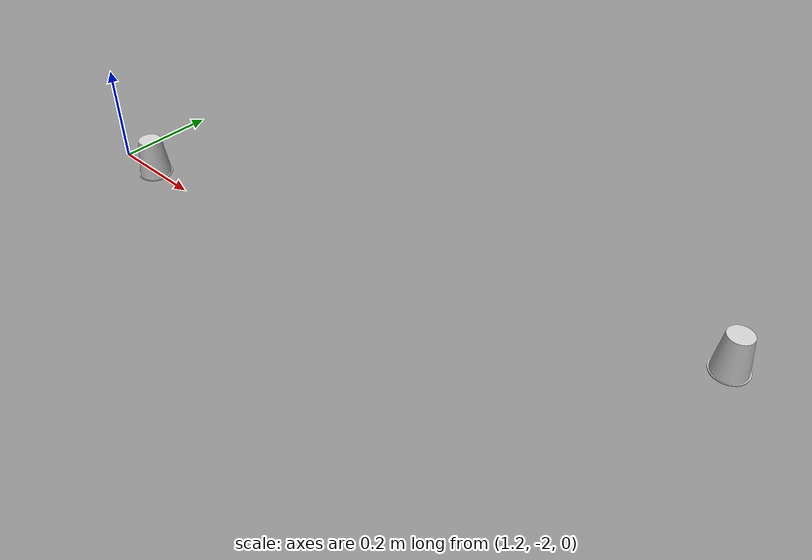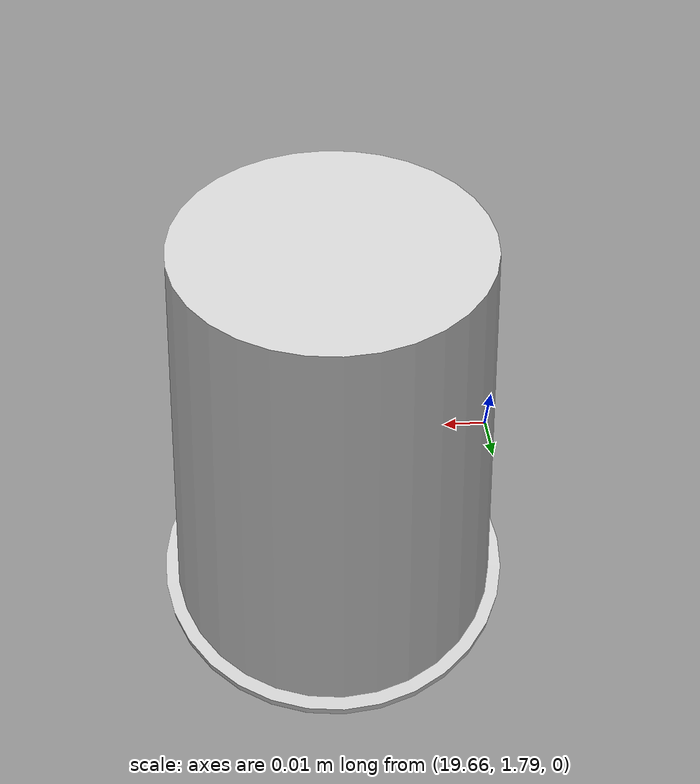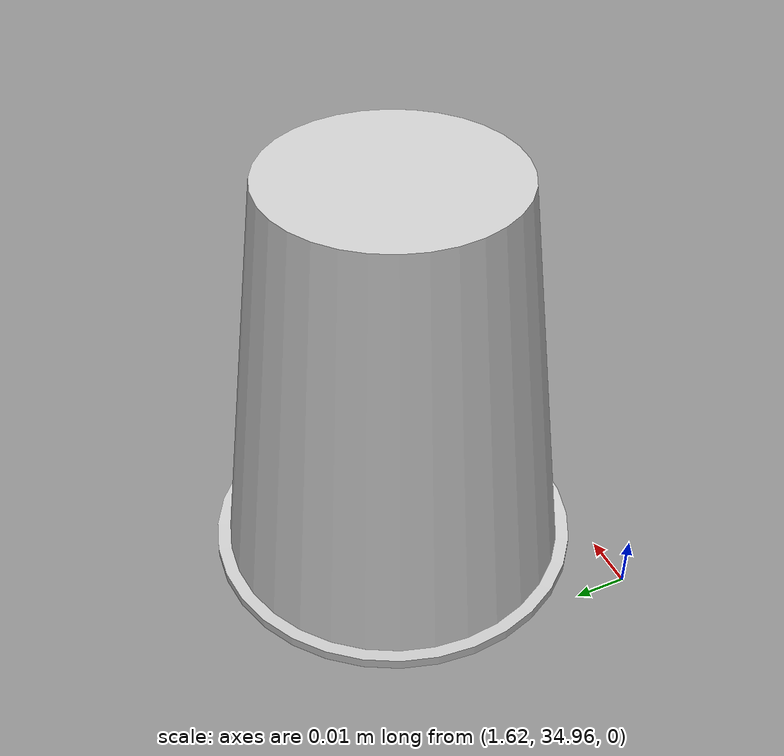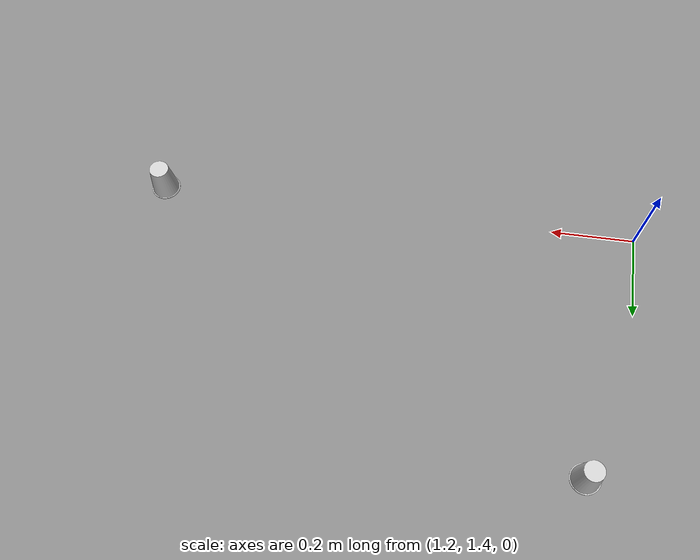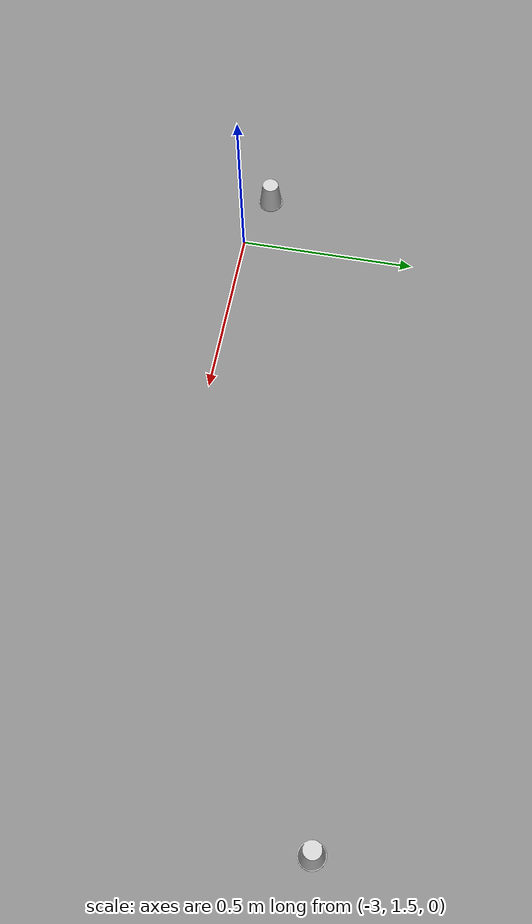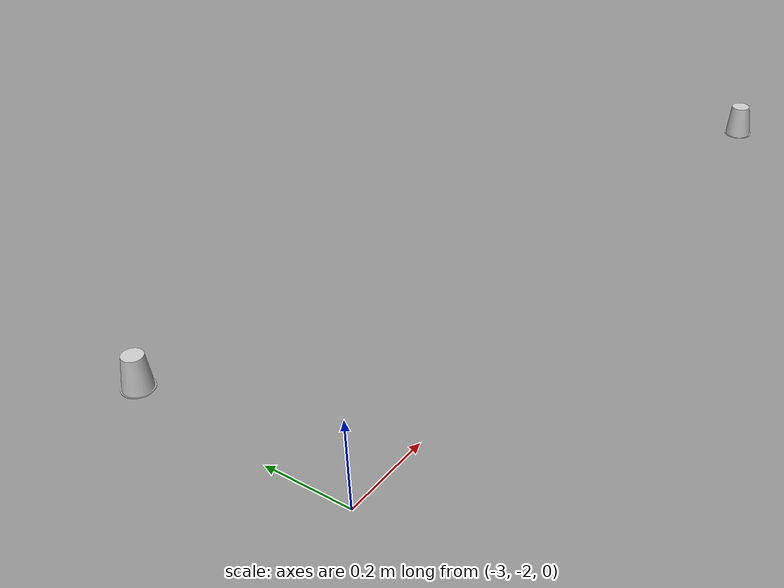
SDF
<?xml version='1.0' encoding='UTF-8'?>
<sdf version="1.4">
  <model name="some track">
    <include>
      <uri>model://cone_yellow</uri>
      <pose>6.0624964579380345 -1.6897916447454264 0 0 0 0</pose>
      <name>cone_right</name>
    </include>
    <include>
      <uri>model://cone_yellow</uri>
      <pose>10.639639192257091 -1.920964581629896 0 0 0 0</pose>
      <name>cone_right</name>
    </include>
    <include>
      <uri>model://cone_yellow</uri>
      <pose>15.367904768119617 -1.8495894439472167 0 0 0 0</pose>
      <name>cone_right</name>
    </include>
    <include>
      <uri>model://cone_yellow</uri>
      <pose>20.303737556669656 -1.114349716415083 0 0 0 0</pose>
      <name>cone_right</name>
    </include>
    <include>
      <uri>model://cone_yellow</uri>
      <pose>25.17521520529696 0.575356401773409 0 0 0 0</pose>
      <name>cone_right</name>
    </include>
    <include>
      <uri>model://cone_yellow</uri>
      <pose>29.313386760866987 3.460044588287364 0 0 0 0</pose>
      <name>cone_right</name>
    </include>
    <include>
      <uri>model://cone_yellow</uri>
      <pose>31.920629746072326 7.744814820012188 0 0 0 0</pose>
      <name>cone_right</name>
    </include>
    <include>
      <uri>model://cone_yellow</uri>
      <pose>32.707883296138554 12.820893795495213 0 0 0 0</pose>
      <name>cone_right</name>
    </include>
    <include>
      <uri>model://cone_yellow</uri>
      <pose>32.09515358715707 18.125974831733796 0 0 0 0</pose>
      <name>cone_right</name>
    </include>
    <include>
      <uri>model://cone_yellow</uri>
      <pose>30.45028163296825 23.2619824953855 0 0 0 0</pose>
      <name>cone_right</name>
    </include>
    <include>
      <uri>model://cone_yellow</uri>
      <pose>27.9823173845637 27.89303912029178 0 0 0 0</pose>
      <name>cone_right</name>
    </include>
    <include>
      <uri>model://cone_yellow</uri>
      <pose>24.737838573995084 31.711691888426415 0 0 0 0</pose>
      <name>cone_right</name>
    </include>
    <include>
      <uri>model://cone_yellow</uri>
      <pose>20.728307546362487 34.35867277802726 0 0 0 0</pose>
      <name>cone_right</name>
    </include>
    <include>
      <uri>model://cone_yellow</uri>
      <pose>16.138086486308648 35.54475155072505 0 0 0 0</pose>
      <name>cone_right</name>
    </include>
    <include>
      <uri>model://cone_yellow</uri>
      <pose>11.344089023021613 35.66002855428607 0 0 0 0</pose>
      <name>cone_right</name>
    </include>
    <include>
      <uri>model://cone_yellow</uri>
      <pose>6.479828067045823 35.30208519088296 0 0 0 0</pose>
      <name>cone_right</name>
    </include>
    <include>
      <uri>model://cone_yellow</uri>
      <pose>1.6514790794924707 34.994085719571814 0 0 0 0</pose>
      <name>cone_right</name>
    </include>
    <include>
      <uri>model://cone_yellow</uri>
      <pose>-3.0386919043484966 35.17664050780866 0 0 0 0</pose>
      <name>cone_right</name>
    </include>
    <include>
      <uri>model://cone_yellow</uri>
      <pose>-7.761980034442589 35.65742691577507 0 0 0 0</pose>
      <name>cone_right</name>
    </include>
    <include>
      <uri>model://cone_yellow</uri>
      <pose>-12.526463924531448 35.65549090248387 0 0 0 0</pose>
      <name>cone_right</name>
    </include>
    <include>
      <uri>model://cone_yellow</uri>
      <pose>-17.2303307019462 34.24883196354585 0 0 0 0</pose>
      <name>cone_right</name>
    </include>
    <include>
      <uri>model://cone_yellow</uri>
      <pose>-21.333946351330386 31.193791289275282 0 0 0 0</pose>
      <name>cone_right</name>
    </include>
    <include>
      <uri>model://cone_yellow</uri>
      <pose>-24.515190836168113 27.031291817993772 0 0 0 0</pose>
      <name>cone_right</name>
    </include>
    <include>
      <uri>model://cone_yellow</uri>
      <pose>-26.567620717993172 22.22362226632429 0 0 0 0</pose>
      <name>cone_right</name>
    </include>
    <include>
      <uri>model://cone_yellow</uri>
      <pose>-27.343624211893513 17.140400469689627 0 0 0 0</pose>
      <name>cone_right</name>
    </include>
    <include>
      <uri>model://cone_yellow</uri>
      <pose>-26.78834033639424 12.070327835291652 0 0 0 0</pose>
      <name>cone_right</name>
    </include>
    <include>
      <uri>model://cone_yellow</uri>
      <pose>-24.846063964139518 7.3058214699540285 0 0 0 0</pose>
      <name>cone_right</name>
    </include>
    <include>
      <uri>model://cone_yellow</uri>
      <pose>-21.611372142438714 3.211012077065412 0 0 0 0</pose>
      <name>cone_right</name>
    </include>
    <include>
      <uri>model://cone_yellow</uri>
      <pose>-17.429866060815904 0.1362270062818356 0 0 0 0</pose>
      <name>cone_right</name>
    </include>
    <include>
      <uri>model://cone_yellow</uri>
      <pose>-12.621626979199972 -1.5802853475468372 0 0 0 0</pose>
      <name>cone_right</name>
    </include>
    <include>
      <uri>model://cone_yellow</uri>
      <pose>-7.642431824331277 -1.782479009922477 0 0 0 0</pose>
      <name>cone_right</name>
    </include>
    <include>
      <uri>model://cone_yellow</uri>
      <pose>-2.9698257537325596 -1.4429321445773 0 0 0 0</pose>
      <name>cone_right</name>
    </include>
    <include>
      <uri>model://cone_yellow</uri>
      <pose>2.458102190359476 -1.7140929927790651 0 0 0 0</pose>
      <name>cone_right</name>
    </include>
    <include>
      <uri>model://cone_blue</uri>
      <pose>6.230235870895904 1.305515265963483 0 0 0 0</pose>
      <name>cone_left</name>
    </include>
    <include>
      <uri>model://cone_blue</uri>
      <pose>10.757913197533517 1.0767030549962646 0 0 0 0</pose>
      <name>cone_left</name>
    </include>
    <include>
      <uri>model://cone_blue</uri>
      <pose>15.21673120111233 1.1465992271211278 0 0 0 0</pose>
      <name>cone_left</name>
    </include>
    <include>
      <uri>model://cone_blue</uri>
      <pose>19.699029948819533 1.8240731103762173 0 0 0 0</pose>
      <name>cone_left</name>
    </include>
    <include>
      <uri>model://cone_blue</uri>
      <pose>23.97681822759601 3.325600878876711 0 0 0 0</pose>
      <name>cone_left</name>
    </include>
    <include>
      <uri>model://cone_blue</uri>
      <pose>27.303943986246917 5.6876306664282765 0 0 0 0</pose>
      <name>cone_left</name>
    </include>
    <include>
      <uri>model://cone_blue</uri>
      <pose>29.143189425047854 8.878757174432156 0 0 0 0</pose>
      <name>cone_left</name>
    </include>
    <include>
      <uri>model://cone_blue</uri>
      <pose>29.710892977303637 12.955240469476326 0 0 0 0</pose>
      <name>cone_left</name>
    </include>
    <include>
      <uri>model://cone_blue</uri>
      <pose>29.14866402289916 17.56188330749396 0 0 0 0</pose>
      <name>cone_left</name>
    </include>
    <include>
      <uri>model://cone_blue</uri>
      <pose>27.653069286062603 22.177730178662774 0 0 0 0</pose>
      <name>cone_left</name>
    </include>
    <include>
      <uri>model://cone_blue</uri>
      <pose>25.43488243274902 26.30855965804781 0 0 0 0</pose>
      <name>cone_left</name>
    </include>
    <include>
      <uri>model://cone_blue</uri>
      <pose>22.628014374061024 29.57893736777182 0 0 0 0</pose>
      <name>cone_left</name>
    </include>
    <include>
      <uri>model://cone_blue</uri>
      <pose>19.37902502994001 31.67922569124301 0 0 0 0</pose>
      <name>cone_left</name>
    </include>
    <include>
      <uri>model://cone_blue</uri>
      <pose>15.685182489431726 32.57913559959232 0 0 0 0</pose>
      <name>cone_left</name>
    </include>
    <include>
      <uri>model://cone_blue</uri>
      <pose>11.424994628541459 32.661119705555336 0 0 0 0</pose>
      <name>cone_left</name>
    </include>
    <include>
      <uri>model://cone_blue</uri>
      <pose>6.734747970410947 32.312935505292046 0 0 0 0</pose>
      <name>cone_left</name>
    </include>
    <include>
      <uri>model://cone_blue</uri>
      <pose>1.7780664876151018 31.996757638079103 0 0 0 0</pose>
      <name>cone_left</name>
    </include>
    <include>
      <uri>model://cone_blue</uri>
      <pose>-3.2797874426442615 32.18634404400881 0 0 0 0</pose>
      <name>cone_left</name>
    </include>
    <include>
      <uri>model://cone_blue</uri>
      <pose>-8.042160647917019 32.67053910003222 0 0 0 0</pose>
      <name>cone_left</name>
    </include>
    <include>
      <uri>model://cone_blue</uri>
      <pose>-12.312854696072819 32.66310538294977 0 0 0 0</pose>
      <name>cone_left</name>
    </include>
    <include>
      <uri>model://cone_blue</uri>
      <pose>-16.00210115770328 31.51178023099697 0 0 0 0</pose>
      <name>cone_left</name>
    </include>
    <include>
      <uri>model://cone_blue</uri>
      <pose>-19.299036654980124 28.98944500801644 0 0 0 0</pose>
      <name>cone_left</name>
    </include>
    <include>
      <uri>model://cone_blue</uri>
      <pose>-21.982445391559505 25.423435943602552 0 0 0 0</pose>
      <name>cone_left</name>
    </include>
    <include>
      <uri>model://cone_blue</uri>
      <pose>-23.71680919487944 21.28934518767901 0 0 0 0</pose>
      <name>cone_left</name>
    </include>
    <include>
      <uri>model://cone_blue</uri>
      <pose>-24.349598996476587 16.95115721499447 0 0 0 0</pose>
      <name>cone_left</name>
    </include>
    <include>
      <uri>model://cone_blue</uri>
      <pose>-23.849503917469594 12.67302220460512 0 0 0 0</pose>
      <name>cone_left</name>
    </include>
    <include>
      <uri>model://cone_blue</uri>
      <pose>-22.194623636029625 8.709339972316045 0 0 0 0</pose>
      <name>cone_left</name>
    </include>
    <include>
      <uri>model://cone_blue</uri>
      <pose>-19.440651649439832 5.281754103797542 0 0 0 0</pose>
      <name>cone_left</name>
    </include>
    <include>
      <uri>model://cone_blue</uri>
      <pose>-15.889835898250851 2.7107768889583888 0 0 0 0</pose>
      <name>cone_left</name>
    </include>
    <include>
      <uri>model://cone_blue</uri>
      <pose>-11.935620885007078 1.3402275592437165 0 0 0 0</pose>
      <name>cone_left</name>
    </include>
    <include>
      <uri>model://cone_blue</uri>
      <pose>-7.753380046915062 1.2154687034150151 0 0 0 0</pose>
      <name>cone_left</name>
    </include>
    <include>
      <uri>model://cone_blue</uri>
      <pose>-3.1608975500020526 1.5509769336464105 0 0 0 0</pose>
      <name>cone_left</name>
    </include>
    <include>
      <uri>model://cone_blue</uri>
      <pose>2.3721317998292193 1.4023336639428976 0 0 0 0</pose>
      <name>cone_left</name>
    </include>
    <include>
      <uri>model://cone_orange_big</uri>
      <pose>-1.3 2.0 0 0 0 0</pose>
      <name>cone_orange_big</name>
    </include>
    <include>
      <uri>model://cone_orange_big</uri>
      <pose>-1.3 -2.0 0 0 0 0</pose>
      <name>cone_orange_big</name>
    </include>
    <include>
      <uri>model://cone_orange_big</uri>
      <pose>1.3 2.0 0 0 0 0</pose>
      <name>cone_orange_big</name>
    </include>
    <include>
      <uri>model://cone_orange_big</uri>
      <pose>1.3 -2.0 0 0 0 0</pose>
      <name>cone_orange_big</name>
    </include>
  </model>
</sdf>

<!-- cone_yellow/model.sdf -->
<sdf version='1.4'>
  <model name="cone_yellow">
    <link name="link">
    <collision name="collision"><geometry><box><size> 0.05 0.05 0.01</size>
             </box></geometry></collision>
      <visual name="visual">
        <geometry>
          <mesh>
            <uri>model://cup.dae</uri>
            <scale>1 1 1</scale>
          </mesh>
        </geometry>
        <material>
            <script>
              <uri>model://cone_yellow/materials/scripts</uri>
              <uri>model://cone_yellow/materials/textures</uri>
              <name>cone_yellow/Image</name>
            </script>
        </material>
      </visual>
    </link>
  </model>
</sdf>

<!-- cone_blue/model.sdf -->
<sdf version='1.4'>
  <model name="cone_blue">
    <link name="link">
    <collision name="collision"><geometry><box><size> 0.05 0.05 0.01</size>
             </box></geometry></collision>
      <visual name="visual">
        <geometry>
          <mesh>
            <uri>model://cup.dae</uri>
            <scale>1 1 1</scale>
          </mesh>
        </geometry>
        <material>
            <script>
              <uri>model://cone_blue/materials/scripts</uri>
              <uri>model://cone_blue/materials/textures</uri>
              <name>cone_blue/Image</name>
            </script>
        </material>
      </visual>
    </link>
  </model>
</sdf>

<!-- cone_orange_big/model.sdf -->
<sdf version='1.4'>
  <model name="cone_orange_big">
    <link name="link">
    <collision name="collision"><geometry><box><size> 0.05 0.05 0.01</size>
             </box></geometry></collision>
      <visual name="visual">
        <geometry>
          <mesh>
            <uri>model://cup.dae</uri>
            <scale>1 1 1</scale>
          </mesh>
        </geometry>
        <material>
            <script>
              <uri>model://cone_orange_big/materials/scripts</uri>
              <uri>model://cone_orange_big/materials/textures</uri>
              <name>cone_orange_big/Image</name>
            </script>
        </material>
      </visual>
    </link>
  </model>
</sdf>
